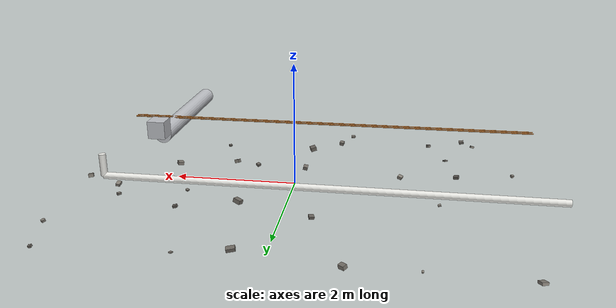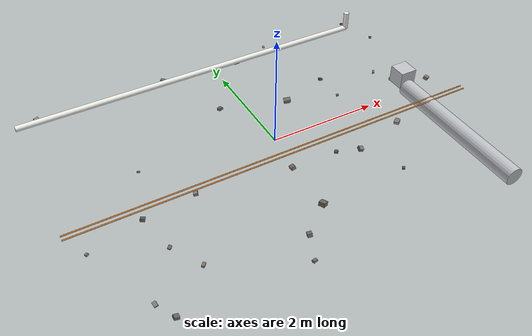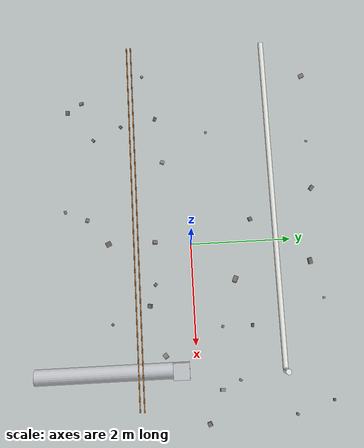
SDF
<sdf version="1.6">
 <world name="crawlspace">
  <model name="plumbing">
   <static>true</static>
   <link name="link">
    <visual name="drain">
     <pose>-0.7 1.6 0.66 0 1.5708 0</pose>
     <geometry><cylinder><radius>0.05</radius><length>6.4</length></cylinder></geometry>
     <material>
      <ambient>0.92 0.92 0.9 1</ambient>
      <diffuse>0.92 0.92 0.9 1</diffuse>
      <specular>0.05 0.05 0.05 1</specular>
     </material>
    </visual>
    <collision name="drain">
     <pose>-0.7 1.6 0.66 0 1.5708 0</pose>
     <geometry><cylinder><radius>0.05</radius><length>6.4</length></cylinder></geometry>
    </collision>
    <visual name="drain_riser">
     <pose>2.5 1.6 0.8225 0 0 0</pose>
     <geometry><cylinder><radius>0.05</radius><length>0.325</length></cylinder></geometry>
     <material>
      <ambient>0.92 0.92 0.9 1</ambient>
      <diffuse>0.92 0.92 0.9 1</diffuse>
      <specular>0.05 0.05 0.05 1</specular>
     </material>
    </visual>
    <collision name="drain_riser">
     <pose>2.5 1.6 0.8225 0 0 0</pose>
     <geometry><cylinder><radius>0.05</radius><length>0.325</length></cylinder></geometry>
    </collision>
    <visual name="supply_0">
     <pose>-0.4 -1 0.72 0 1.5708 0</pose>
     <geometry><cylinder><radius>0.011</radius><length>7</length></cylinder></geometry>
     <material>
      <ambient>0.72 0.45 0.2 1</ambient>
      <diffuse>0.72 0.45 0.2 1</diffuse>
      <specular>0.05 0.05 0.05 1</specular>
     </material>
    </visual>
    <collision name="supply_0">
     <pose>-0.4 -1 0.72 0 1.5708 0</pose>
     <geometry><cylinder><radius>0.011</radius><length>7</length></cylinder></geometry>
    </collision>
    <visual name="supply_1">
     <pose>-0.4 -1.08 0.72 0 1.5708 0</pose>
     <geometry><cylinder><radius>0.011</radius><length>7</length></cylinder></geometry>
     <material>
      <ambient>0.72 0.45 0.2 1</ambient>
      <diffuse>0.72 0.45 0.2 1</diffuse>
      <specular>0.05 0.05 0.05 1</specular>
     </material>
    </visual>
    <collision name="supply_1">
     <pose>-0.4 -1.08 0.72 0 1.5708 0</pose>
     <geometry><cylinder><radius>0.011</radius><length>7</length></cylinder></geometry>
    </collision>
   </link>
  </model>
  <model name="hvac">
   <static>true</static>
   <link name="link">
    <visual name="flex_duct">
     <pose>2.4 -1.725 0.58 1.5708 0 0</pose>
     <geometry><cylinder><radius>0.15</radius><length>2.55</length></cylinder></geometry>
     <material>
      <ambient>0.75 0.76 0.78 1</ambient>
      <diffuse>0.75 0.76 0.78 1</diffuse>
      <specular>0.05 0.05 0.05 1</specular>
     </material>
    </visual>
    <collision name="flex_duct">
     <pose>2.4 -1.725 0.58 1.5708 0 0</pose>
     <geometry><cylinder><radius>0.15</radius><length>2.55</length></cylinder></geometry>
    </collision>
    <visual name="register_boot">
     <pose>2.4 -0.3 0.75 0 0 0</pose>
     <geometry><box><size>0.3 0.3 0.3</size></box></geometry>
     <material>
      <ambient>0.75 0.76 0.78 1</ambient>
      <diffuse>0.75 0.76 0.78 1</diffuse>
      <specular>0.05 0.05 0.05 1</specular>
     </material>
    </visual>
    <collision name="register_boot">
     <pose>2.4 -0.3 0.75 0 0 0</pose>
     <geometry><box><size>0.3 0.3 0.3</size></box></geometry>
    </collision>
   </link>
  </model>
  <model name="rocks">
   <static>true</static>
   <link name="link">
    <visual name="rock_00">
     <pose>-2.0224 2.4964 0.017 -0.1744 0.0851 1.4424</pose>
     <geometry><box><size>0.0436 0.0292 0.0194</size></box></geometry>
     <material>
      <ambient>0.5398 0.5159 0.4799 1</ambient>
      <diffuse>0.5398 0.5159 0.4799 1</diffuse>
      <specular>0.05 0.05 0.05 1</specular>
     </material>
    </visual>
    <collision name="rock_00">
     <pose>-2.0224 2.4964 0.017 -0.1744 0.0851 1.4424</pose>
     <geometry><box><size>0.0436 0.0292 0.0194</size></box></geometry>
    </collision>
    <visual name="rock_01">
     <pose>-1.7259 -0.4986 0.0122 -0.2621 0.0721 1.185</pose>
     <geometry><box><size>0.0864 0.0716 0.0469</size></box></geometry>
     <material>
      <ambient>0.5385 0.5146 0.4787 1</ambient>
      <diffuse>0.5385 0.5146 0.4787 1</diffuse>
      <specular>0.05 0.05 0.05 1</specular>
     </material>
    </visual>
    <collision name="rock_01">
     <pose>-1.7259 -0.4986 0.0122 -0.2621 0.0721 1.185</pose>
     <geometry><box><size>0.0864 0.0716 0.0469</size></box></geometry>
    </collision>
    <visual name="rock_02">
     <pose>1.1902 -0.8724 -0.0095 -0.2147 -0.2614 2.9721</pose>
     <geometry><box><size>0.0783 0.0854 0.0596</size></box></geometry>
     <material>
      <ambient>0.4647 0.444 0.413 1</ambient>
      <diffuse>0.4647 0.444 0.413 1</diffuse>
      <specular>0.05 0.05 0.05 1</specular>
     </material>
    </visual>
    <collision name="rock_02">
     <pose>1.1902 -0.8724 -0.0095 -0.2147 -0.2614 2.9721</pose>
     <geometry><box><size>0.0783 0.0854 0.0596</size></box></geometry>
    </collision>
    <visual name="rock_03">
     <pose>-0.0839 -1.6532 0.0164 -0.086 0.2268 0.424</pose>
     <geometry><box><size>0.1008 0.1094 0.0724</size></box></geometry>
     <material>
      <ambient>0.4114 0.3931 0.3657 1</ambient>
      <diffuse>0.4114 0.3931 0.3657 1</diffuse>
      <specular>0.05 0.05 0.05 1</specular>
     </material>
    </visual>
    <collision name="rock_03">
     <pose>-0.0839 -1.6532 0.0164 -0.086 0.2268 0.424</pose>
     <geometry><box><size>0.1008 0.1094 0.0724</size></box></geometry>
    </collision>
    <visual name="rock_04">
     <pose>-2.2374 -1.8891 0.0941 0.1208 -0.168 0.7662</pose>
     <geometry><box><size>0.0674 0.0498 0.051</size></box></geometry>
     <material>
      <ambient>0.4513 0.4313 0.4012 1</ambient>
      <diffuse>0.4513 0.4313 0.4012 1</diffuse>
      <specular>0.05 0.05 0.05 1</specular>
     </material>
    </visual>
    <collision name="rock_04">
     <pose>-2.2374 -1.8891 0.0941 0.1208 -0.168 0.7662</pose>
     <geometry><box><size>0.0674 0.0498 0.051</size></box></geometry>
    </collision>
    <visual name="rock_05">
     <pose>-3.6118 -0.8466 -0.0006 -0.1948 -0.0622 0.5221</pose>
     <geometry><box><size>0.0464 0.0451 0.0357</size></box></geometry>
     <material>
      <ambient>0.5205 0.4973 0.4626 1</ambient>
      <diffuse>0.5205 0.4973 0.4626 1</diffuse>
      <specular>0.05 0.05 0.05 1</specular>
     </material>
    </visual>
    <collision name="rock_05">
     <pose>-3.6118 -0.8466 -0.0006 -0.1948 -0.0622 0.5221</pose>
     <geometry><box><size>0.0464 0.0451 0.0357</size></box></geometry>
    </collision>
    <visual name="rock_06">
     <pose>1.2075 2.5642 0.0568 -0.0949 -0.1979 1.3685</pose>
     <geometry><box><size>0.0512 0.0388 0.0179</size></box></geometry>
     <material>
      <ambient>0.4976 0.4755 0.4423 1</ambient>
      <diffuse>0.4976 0.4755 0.4423 1</diffuse>
      <specular>0.05 0.05 0.05 1</specular>
     </material>
    </visual>
    <collision name="rock_06">
     <pose>1.2075 2.5642 0.0568 -0.0949 -0.1979 1.3685</pose>
     <geometry><box><size>0.0512 0.0388 0.0179</size></box></geometry>
    </collision>
    <visual name="rock_07">
     <pose>-3.0691 -2.1248 0.0328 0.288 -0.2622 0.0532</pose>
     <geometry><box><size>0.0609 0.0787 0.04</size></box></geometry>
     <material>
      <ambient>0.4875 0.4658 0.4333 1</ambient>
      <diffuse>0.4875 0.4658 0.4333 1</diffuse>
      <specular>0.05 0.05 0.05 1</specular>
     </material>
    </visual>
    <collision name="rock_07">
     <pose>-3.0691 -2.1248 0.0328 0.288 -0.2622 0.0532</pose>
     <geometry><box><size>0.0609 0.0787 0.04</size></box></geometry>
    </collision>
    <visual name="rock_08">
     <pose>-2.6611 -0.6138 0.0182 0.2014 -0.174 2.7495</pose>
     <geometry><box><size>0.0804 0.0639 0.0551</size></box></geometry>
     <material>
      <ambient>0.3605 0.3445 0.3205 1</ambient>
      <diffuse>0.3605 0.3445 0.3205 1</diffuse>
      <specular>0.05 0.05 0.05 1</specular>
     </material>
    </visual>
    <collision name="rock_08">
     <pose>-2.6611 -0.6138 0.0182 0.2014 -0.174 2.7495</pose>
     <geometry><box><size>0.0804 0.0639 0.0551</size></box></geometry>
    </collision>
    <visual name="rock_09">
     <pose>-3.4549 2.5119 0.0041 -0.0351 -0.25 1.9019</pose>
     <geometry><box><size>0.1076 0.0871 0.0392</size></box></geometry>
     <material>
      <ambient>0.5346 0.5108 0.4752 1</ambient>
      <diffuse>0.5346 0.5108 0.4752 1</diffuse>
      <specular>0.05 0.05 0.05 1</specular>
     </material>
    </visual>
    <collision name="rock_09">
     <pose>-3.4549 2.5119 0.0041 -0.0351 -0.25 1.9019</pose>
     <geometry><box><size>0.1076 0.0871 0.0392</size></box></geometry>
    </collision>
    <visual name="rock_10">
     <pose>-0.4478 1.2178 0.0209 -0.1815 -0.0323 0.3399</pose>
     <geometry><box><size>0.0787 0.075 0.0436</size></box></geometry>
     <material>
      <ambient>0.4006 0.3828 0.3561 1</ambient>
      <diffuse>0.4006 0.3828 0.3561 1</diffuse>
      <specular>0.05 0.05 0.05 1</specular>
     </material>
    </visual>
    <collision name="rock_10">
     <pose>-0.4478 1.2178 0.0209 -0.1815 -0.0323 0.3399</pose>
     <geometry><box><size>0.0787 0.075 0.0436</size></box></geometry>
    </collision>
    <visual name="rock_11">
     <pose>1.666 1.1249 0.0021 0.2807 0.1534 1.5789</pose>
     <geometry><box><size>0.052 0.0669 0.0417</size></box></geometry>
     <material>
      <ambient>0.3768 0.3601 0.3349 1</ambient>
      <diffuse>0.3768 0.3601 0.3349 1</diffuse>
      <specular>0.05 0.05 0.05 1</specular>
     </material>
    </visual>
    <collision name="rock_11">
     <pose>1.666 1.1249 0.0021 0.2807 0.1534 1.5789</pose>
     <geometry><box><size>0.052 0.0669 0.0417</size></box></geometry>
    </collision>
    <visual name="rock_12">
     <pose>1.5183 -1.6163 0.0058 0.0679 0.2453 2.3351</pose>
     <geometry><box><size>0.0468 0.0528 0.0303</size></box></geometry>
     <material>
      <ambient>0.3612 0.3451 0.3211 1</ambient>
      <diffuse>0.3612 0.3451 0.3211 1</diffuse>
      <specular>0.05 0.05 0.05 1</specular>
     </material>
    </visual>
    <collision name="rock_12">
     <pose>1.5183 -1.6163 0.0058 0.0679 0.2453 2.3351</pose>
     <geometry><box><size>0.0468 0.0528 0.0303</size></box></geometry>
    </collision>
    <visual name="rock_13">
     <pose>3.1641 2.6013 0.007 0.2649 0.2103 1.6219</pose>
     <geometry><box><size>0.0401 0.047 0.0361</size></box></geometry>
     <material>
      <ambient>0.4265 0.4075 0.3791 1</ambient>
      <diffuse>0.4265 0.4075 0.3791 1</diffuse>
      <specular>0.05 0.05 0.05 1</specular>
     </material>
    </visual>
    <collision name="rock_13">
     <pose>3.1641 2.6013 0.007 0.2649 0.2103 1.6219</pose>
     <geometry><box><size>0.0401 0.047 0.0361</size></box></geometry>
    </collision>
    <visual name="rock_14">
     <pose>3.3935 1.8741 0.0055 0.2616 0.1368 2.579</pose>
     <geometry><box><size>0.0453 0.0554 0.0382</size></box></geometry>
     <material>
      <ambient>0.4832 0.4617 0.4295 1</ambient>
      <diffuse>0.4832 0.4617 0.4295 1</diffuse>
      <specular>0.05 0.05 0.05 1</specular>
     </material>
    </visual>
    <collision name="rock_14">
     <pose>3.3935 1.8741 0.0055 0.2616 0.1368 2.579</pose>
     <geometry><box><size>0.0453 0.0554 0.0382</size></box></geometry>
    </collision>
    <visual name="rock_15">
     <pose>0.7765 -0.7442 -0.0031 -0.2588 0.1399 0.851</pose>
     <geometry><box><size>0.0596 0.061 0.0441</size></box></geometry>
     <material>
      <ambient>0.4084 0.3902 0.363 1</ambient>
      <diffuse>0.4084 0.3902 0.363 1</diffuse>
      <specular>0.05 0.05 0.05 1</specular>
     </material>
    </visual>
    <collision name="rock_15">
     <pose>0.7765 -0.7442 -0.0031 -0.2588 0.1399 0.851</pose>
     <geometry><box><size>0.0596 0.061 0.0441</size></box></geometry>
    </collision>
    <visual name="rock_16">
     <pose>-0.594 -2.068 0.002 -0.1336 0.233 1.2937</pose>
     <geometry><box><size>0.0761 0.077 0.0635</size></box></geometry>
     <material>
      <ambient>0.4508 0.4307 0.4007 1</ambient>
      <diffuse>0.4508 0.4307 0.4007 1</diffuse>
      <specular>0.05 0.05 0.05 1</specular>
     </material>
    </visual>
    <collision name="rock_16">
     <pose>-0.594 -2.068 0.002 -0.1336 0.233 1.2937</pose>
     <geometry><box><size>0.0761 0.077 0.0635</size></box></geometry>
    </collision>
    <visual name="rock_17">
     <pose>-1.0259 2.5134 0.0158 0.1978 -0.0792 2.4528</pose>
     <geometry><box><size>0.098 0.0725 0.0619</size></box></geometry>
     <material>
      <ambient>0.4674 0.4466 0.4155 1</ambient>
      <diffuse>0.4674 0.4466 0.4155 1</diffuse>
      <specular>0.05 0.05 0.05 1</specular>
     </material>
    </visual>
    <collision name="rock_17">
     <pose>-1.0259 2.5134 0.0158 0.1978 -0.0792 2.4528</pose>
     <geometry><box><size>0.098 0.0725 0.0619</size></box></geometry>
    </collision>
    <visual name="rock_18">
     <pose>2.1714 -0.6051 0.0061 -0.2179 0.0662 2.1521</pose>
     <geometry><box><size>0.0886 0.0983 0.0582</size></box></geometry>
     <material>
      <ambient>0.5015 0.4792 0.4458 1</ambient>
      <diffuse>0.5015 0.4792 0.4458 1</diffuse>
      <specular>0.05 0.05 0.05 1</specular>
     </material>
    </visual>
    <collision name="rock_18">
     <pose>2.1714 -0.6051 0.0061 -0.2179 0.0662 2.1521</pose>
     <geometry><box><size>0.0886 0.0983 0.0582</size></box></geometry>
    </collision>
    <visual name="rock_19">
     <pose>2.7011 0.8246 0.0073 -0.0803 0.1971 2.5598</pose>
     <geometry><box><size>0.0379 0.0656 0.039</size></box></geometry>
     <material>
      <ambient>0.4777 0.4564 0.4246 1</ambient>
      <diffuse>0.4777 0.4564 0.4246 1</diffuse>
      <specular>0.05 0.05 0.05 1</specular>
     </material>
    </visual>
    <collision name="rock_19">
     <pose>2.7011 0.8246 0.0073 -0.0803 0.1971 2.5598</pose>
     <geometry><box><size>0.0379 0.0656 0.039</size></box></geometry>
    </collision>
    <visual name="rock_20">
     <pose>1.6629 0.5386 0.0136 -0.2316 0.1328 1.0934</pose>
     <geometry><box><size>0.046 0.0479 0.0278</size></box></geometry>
     <material>
      <ambient>0.4536 0.4334 0.4032 1</ambient>
      <diffuse>0.4536 0.4334 0.4032 1</diffuse>
      <specular>0.05 0.05 0.05 1</specular>
     </material>
    </visual>
    <collision name="rock_20">
     <pose>1.6629 0.5386 0.0136 -0.2316 0.1328 1.0934</pose>
     <geometry><box><size>0.046 0.0479 0.0278</size></box></geometry>
    </collision>
    <visual name="rock_21">
     <pose>-2.5179 -1.3235 0.033 -0.1241 -0.194 2.3543</pose>
     <geometry><box><size>0.0549 0.0669 0.0252</size></box></geometry>
     <material>
      <ambient>0.4001 0.3823 0.3556 1</ambient>
      <diffuse>0.4001 0.3823 0.3556 1</diffuse>
      <specular>0.05 0.05 0.05 1</specular>
     </material>
    </visual>
    <collision name="rock_21">
     <pose>-2.5179 -1.3235 0.033 -0.1241 -0.194 2.3543</pose>
     <geometry><box><size>0.0549 0.0669 0.0252</size></box></geometry>
    </collision>
    <visual name="rock_22">
     <pose>-2.8933 -2.4253 0.0108 0.2291 0.1417 1.5045</pose>
     <geometry><box><size>0.0787 0.0824 0.043</size></box></geometry>
     <material>
      <ambient>0.4188 0.4002 0.3723 1</ambient>
      <diffuse>0.4188 0.4002 0.3723 1</diffuse>
      <specular>0.05 0.05 0.05 1</specular>
     </material>
    </visual>
    <collision name="rock_22">
     <pose>-2.8933 -2.4253 0.0108 0.2291 0.1417 1.5045</pose>
     <geometry><box><size>0.0787 0.0824 0.043</size></box></geometry>
    </collision>
    <visual name="rock_23">
     <pose>0.465 2.3547 0.0514 -0.1986 0.1572 0.1912</pose>
     <geometry><box><size>0.1256 0.0778 0.053</size></box></geometry>
     <material>
      <ambient>0.4334 0.4141 0.3853 1</ambient>
      <diffuse>0.4334 0.4141 0.3853 1</diffuse>
      <specular>0.05 0.05 0.05 1</specular>
     </material>
    </visual>
    <collision name="rock_23">
     <pose>0.465 2.3547 0.0514 -0.1986 0.1572 0.1912</pose>
     <geometry><box><size>0.1256 0.0778 0.053</size></box></geometry>
    </collision>
    <visual name="rock_24">
     <pose>2.8671 0.462 0.0126 0.2536 0.1153 3.0893</pose>
     <geometry><box><size>0.0692 0.0921 0.0461</size></box></geometry>
     <material>
      <ambient>0.5214 0.4982 0.4634 1</ambient>
      <diffuse>0.5214 0.4982 0.4634 1</diffuse>
      <specular>0.05 0.05 0.05 1</specular>
     </material>
    </visual>
    <collision name="rock_24">
     <pose>2.8671 0.462 0.0126 0.2536 0.1153 3.0893</pose>
     <geometry><box><size>0.0692 0.0921 0.0461</size></box></geometry>
    </collision>
    <visual name="rock_25">
     <pose>-0.0767 -0.7206 0.0041 -0.2233 0.2027 1.5706</pose>
     <geometry><box><size>0.0906 0.0789 0.0599</size></box></geometry>
     <material>
      <ambient>0.4457 0.4259 0.3961 1</ambient>
      <diffuse>0.4457 0.4259 0.3961 1</diffuse>
      <specular>0.05 0.05 0.05 1</specular>
     </material>
    </visual>
    <collision name="rock_25">
     <pose>-0.0767 -0.7206 0.0041 -0.2233 0.2027 1.5706</pose>
     <geometry><box><size>0.0906 0.0789 0.0599</size></box></geometry>
    </collision>
    <visual name="rock_26">
     <pose>3.4896 0.1818 0.008 0.1949 0.0885 0.3904</pose>
     <geometry><box><size>0.0835 0.0794 0.0584</size></box></geometry>
     <material>
      <ambient>0.498 0.4759 0.4427 1</ambient>
      <diffuse>0.498 0.4759 0.4427 1</diffuse>
      <specular>0.05 0.05 0.05 1</specular>
     </material>
    </visual>
    <collision name="rock_26">
     <pose>3.4896 0.1818 0.008 0.1949 0.0885 0.3904</pose>
     <geometry><box><size>0.0835 0.0794 0.0584</size></box></geometry>
    </collision>
    <visual name="rock_27">
     <pose>-0.7838 -2.5113 -0.0074 -0.2141 0.113 0.2504</pose>
     <geometry><box><size>0.0709 0.0509 0.0381</size></box></geometry>
     <material>
      <ambient>0.4719 0.4509 0.4194 1</ambient>
      <diffuse>0.4719 0.4509 0.4194 1</diffuse>
      <specular>0.05 0.05 0.05 1</specular>
     </material>
    </visual>
    <collision name="rock_27">
     <pose>-0.7838 -2.5113 -0.0074 -0.2141 0.113 0.2504</pose>
     <geometry><box><size>0.0709 0.0509 0.0381</size></box></geometry>
    </collision>
    <visual name="rock_28">
     <pose>-2.3336 0.4316 -0.0328 -0.2352 0.2994 0.1244</pose>
     <geometry><box><size>0.0498 0.0372 0.0254</size></box></geometry>
     <material>
      <ambient>0.5337 0.51 0.4744 1</ambient>
      <diffuse>0.5337 0.51 0.4744 1</diffuse>
      <specular>0.05 0.05 0.05 1</specular>
     </material>
    </visual>
    <collision name="rock_28">
     <pose>-2.3336 0.4316 -0.0328 -0.2352 0.2994 0.1244</pose>
     <geometry><box><size>0.0498 0.0372 0.0254</size></box></geometry>
    </collision>
    <visual name="rock_29">
     <pose>0.7492 0.842 0.0228 -0.1982 -0.1585 1.1473</pose>
     <geometry><box><size>0.0906 0.1255 0.0654</size></box></geometry>
     <material>
      <ambient>0.4458 0.426 0.3963 1</ambient>
      <diffuse>0.4458 0.426 0.3963 1</diffuse>
      <specular>0.05 0.05 0.05 1</specular>
     </material>
    </visual>
    <collision name="rock_29">
     <pose>0.7492 0.842 0.0228 -0.1982 -0.1585 1.1473</pose>
     <geometry><box><size>0.0906 0.1255 0.0654</size></box></geometry>
    </collision>
   </link>
  </model>
 </world>
</sdf>
